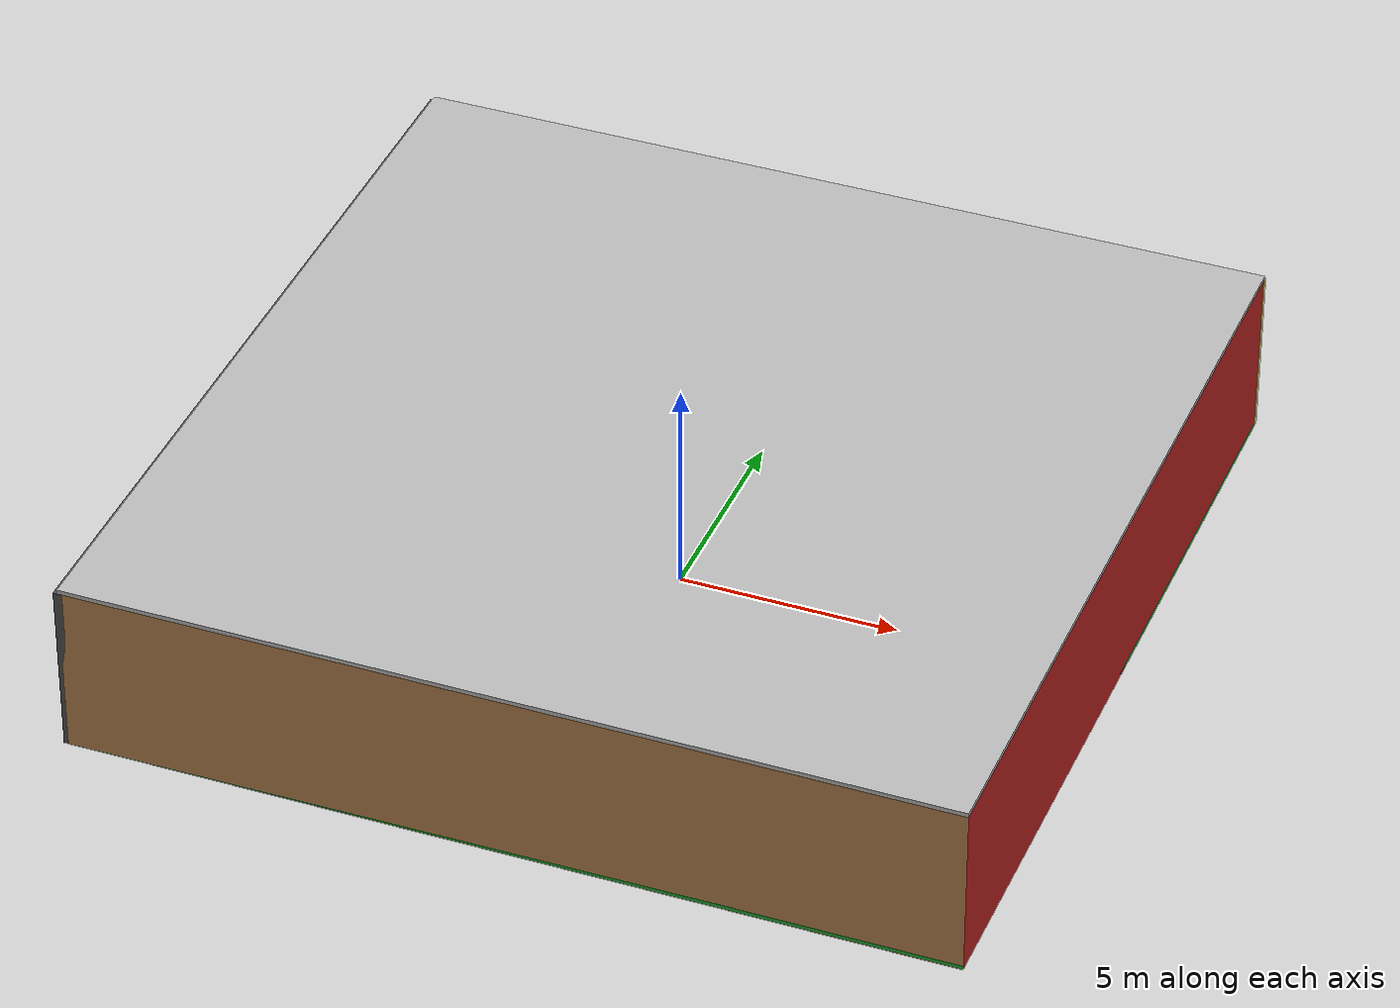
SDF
<sdf version="1.4">
 <world name="default">
  <physics type="ode">
   <max_step_size>0.001</max_step_size>
   <real_time_factor>1</real_time_factor>
   <real_time_update_rate>1000</real_time_update_rate>
   <gravity>0 0 -9.8</gravity>
  </physics>
  <scene><ambient>0.4 0.4 0.4 1</ambient><background>0.7 0.7 0.7 1</background><shadows>1</shadows></scene>
  <model name="Surrounding">
   <static>1</static>
   <link name="Ceiling">
    <collision name="Ceiling_Collision"><geometry><box><size>20 20 0.1</size></box></geometry></collision>
    <visual name="Ceiling_Visual">
     <geometry><box><size>20 20 0.1</size></box></geometry>
     <material>
      <script><uri>file://media/materials/scripts/gazebo.material</uri><name>Gazebo/PioneerBody</name></script>
     </material>
    </visual>
    <pose>0 0 4.05 0 0 0</pose>
   </link>
   <link name="Wall_South">
    <collision name="Wall_South_Collision">
     <geometry><box><size>20 0 4</size></box></geometry>
     <pose>0 0 2 0 -0 0</pose>
    </collision>
    <visual name="Wall_South_Visual">
     <pose>0 0 2 0 -0 0</pose>
     <geometry><box><size>20 0 4</size></box></geometry>
     <material>
      <script><uri>file://media/materials/scripts/gazebo.material</uri><name>Gazebo/WoodFloor</name></script>
     </material>
    </visual>
    <velocity_decay><linear>0</linear><angular>0</angular></velocity_decay>
    <pose>0 -10 0 0 -0 0</pose>
   </link>
   <link name="Wall_East">
    <collision name="Wall_21_Collision">
     <geometry><box><size>20 0 4</size></box></geometry>
     <pose>0 0 2 0 -0 0</pose>
    </collision>
    <visual name="Wall_21_Visual">
     <pose>0 0 2 0 -0 0</pose>
     <geometry><box><size>20 0 4</size></box></geometry>
     <material>
      <script><uri>file://media/materials/scripts/gazebo.material</uri><name>Gazebo/RedGlow</name></script>
     </material>
    </visual>
    <velocity_decay><linear>0</linear><angular>0</angular></velocity_decay>
    <pose>10 0 0 0 -0 1.5708</pose>
   </link>
   <link name="Wall_North">
    <collision name="Wall_22_Collision">
     <geometry><box><size>20 0.2 4</size></box></geometry>
     <pose>0 0 2 0 -0 0</pose>
    </collision>
    <visual name="Wall_22_Visual">
     <pose>0 0 2 0 -0 0</pose>
     <geometry><box><size>20 0.2 4</size></box></geometry>
     <material>
      <script>
       <uri>file://media/materials/scripts/gazebo.material</uri>
       <name>Gazebo/YellowTransparent</name>
      </script>
     </material>
    </visual>
    <velocity_decay><linear>0</linear><angular>0</angular></velocity_decay>
    <pose>0 10 0 0 -0 0</pose>
   </link>
   <link name="Wall_West">
    <collision name="Wall_23_Collision">
     <geometry><box><size>20 0.2 4</size></box></geometry>
     <pose>0 0 2 0 -0 0</pose>
    </collision>
    <visual name="Wall_23_Visual">
     <pose>0 0 2 0 -0 0</pose>
     <geometry><box><size>20 0.2 4</size></box></geometry>
     <material>
      <script><uri>file://media/materials/scripts/gazebo.material</uri><name>Gazebo/Road</name></script>
     </material>
    </visual>
    <velocity_decay><linear>0</linear><angular>0</angular></velocity_decay>
    <pose>-10 0 0 0 0 -1.5708</pose>
   </link>
   <link name="Ground_link">
    <collision name="collision">
     <pose>0 0 .05 0 -0 0</pose>
     <geometry><box><size>20 20 0.1</size></box></geometry>
    </collision>
    <visual name="visual">
     <pose>0 0 .05 0 -0 0</pose>
     <geometry><box><size>20 20 0.1</size></box></geometry>
     <material>
      <script><uri>file://media/materials/scripts/gazebo.material</uri><name>Gazebo/GreenGlow</name></script>
     </material>
    </visual>
   </link>
   <static>1</static>
  </model>
  <spherical_coordinates>
   <surface_model>EARTH_WGS84</surface_model>
   <latitude_deg>0</latitude_deg>
   <longitude_deg>0</longitude_deg>
   <elevation>0</elevation>
   <heading_deg>0</heading_deg>
  </spherical_coordinates>
  <light name="lightball_0" type="diffuse">
   <diffuse>0.8 0.8 0.8 1</diffuse>
   <specular>0.2 0.2 0.2 1</specular>
   <attenuation>
    <range>100</range>
    <constant>0.7</constant>
    <linear>0.01</linear>
    <quadratic>0.001</quadratic>
   </attenuation>
   <direction>-0.5 0.1 -0.9</direction>
   <pose>3.9815482227 -4.7542232075 1.60464362089 0 0 0</pose>
  </light>
  <light name="lightball_1" type="diffuse">
   <diffuse>0.8 0.8 0.8 1</diffuse>
   <specular>0.2 0.2 0.2 1</specular>
   <attenuation>
    <range>100</range>
    <constant>0.7</constant>
    <linear>0.01</linear>
    <quadratic>0.001</quadratic>
   </attenuation>
   <direction>-0.5 0.1 -0.9</direction>
   <pose>7.90472169421 3.82594262285 1.24828344749 0 0 0</pose>
  </light>
  <light name="lightball_2" type="diffuse">
   <diffuse>0.8 0.8 0.8 1</diffuse>
   <specular>0.2 0.2 0.2 1</specular>
   <attenuation>
    <range>100</range>
    <constant>0.7</constant>
    <linear>0.01</linear>
    <quadratic>0.001</quadratic>
   </attenuation>
   <direction>-0.5 0.1 -0.9</direction>
   <pose>-1.84041673472 -3.41301966238 1.16358732361 0 0 0</pose>
  </light>
  <light name="lightball_3" type="diffuse">
   <diffuse>0.8 0.8 0.8 1</diffuse>
   <specular>0.2 0.2 0.2 1</specular>
   <attenuation>
    <range>100</range>
    <constant>0.7</constant>
    <linear>0.01</linear>
    <quadratic>0.001</quadratic>
   </attenuation>
   <direction>-0.5 0.1 -0.9</direction>
   <pose>-8.97954788078 9.79481988552 2.70768888715 0 0 0</pose>
  </light>
  <light name="lightball_4" type="diffuse">
   <diffuse>0.8 0.8 0.8 1</diffuse>
   <specular>0.2 0.2 0.2 1</specular>
   <attenuation>
    <range>100</range>
    <constant>0.7</constant>
    <linear>0.01</linear>
    <quadratic>0.001</quadratic>
   </attenuation>
   <direction>-0.5 0.1 -0.9</direction>
   <pose>7.10749654577 2.58169620878 2.70587461758 0 0 0</pose>
  </light>
  <light name="lightball_5" type="diffuse">
   <diffuse>0.8 0.8 0.8 1</diffuse>
   <specular>0.2 0.2 0.2 1</specular>
   <attenuation>
    <range>100</range>
    <constant>0.7</constant>
    <linear>0.01</linear>
    <quadratic>0.001</quadratic>
   </attenuation>
   <direction>-0.5 0.1 -0.9</direction>
   <pose>-7.87562427138 0.956348937823 1.47254126194 0 0 0</pose>
  </light>
  <light name="lightball_6" type="diffuse">
   <diffuse>0.8 0.8 0.8 1</diffuse>
   <specular>0.2 0.2 0.2 1</specular>
   <attenuation>
    <range>100</range>
    <constant>0.7</constant>
    <linear>0.01</linear>
    <quadratic>0.001</quadratic>
   </attenuation>
   <direction>-0.5 0.1 -0.9</direction>
   <pose>1.5664274265 -6.43447205407 3.33944471331 0 0 0</pose>
  </light>
  <light name="lightball_7" type="diffuse">
   <diffuse>0.8 0.8 0.8 1</diffuse>
   <specular>0.2 0.2 0.2 1</specular>
   <attenuation>
    <range>100</range>
    <constant>0.7</constant>
    <linear>0.01</linear>
    <quadratic>0.001</quadratic>
   </attenuation>
   <direction>-0.5 0.1 -0.9</direction>
   <pose>-4.31818908473 4.21492808397 2.0876829427 0 0 0</pose>
  </light>
  <light name="lightball_8" type="diffuse">
   <diffuse>0.8 0.8 0.8 1</diffuse>
   <specular>0.2 0.2 0.2 1</specular>
   <attenuation>
    <range>100</range>
    <constant>0.7</constant>
    <linear>0.01</linear>
    <quadratic>0.001</quadratic>
   </attenuation>
   <direction>-0.5 0.1 -0.9</direction>
   <pose>-0.783898358791 7.78105631223 2.61611505518 0 0 0</pose>
  </light>
  <light name="lightball_9" type="diffuse">
   <diffuse>0.8 0.8 0.8 1</diffuse>
   <specular>0.2 0.2 0.2 1</specular>
   <attenuation>
    <range>100</range>
    <constant>0.7</constant>
    <linear>0.01</linear>
    <quadratic>0.001</quadratic>
   </attenuation>
   <direction>-0.5 0.1 -0.9</direction>
   <pose>2.74788466722 6.2026276233 0.927405772324 0 0 0</pose>
  </light>
  <include>
   <uri>model://construction_cone</uri>
   <pose>-7.63595090211 -1.19633778795 0 0 0 2.8755876718</pose>
  </include>
  <include>
   <uri>model://robocup_3Dsim_goal</uri>
   <pose>-7.38663177259 0.486811472798 0 0 0 0.135383446902</pose>
  </include>
  <include><uri>model://cabinet</uri><pose>-2.03814523996 4.54467973434 0 0 0 2.11447715801</pose></include>
  <include><uri>model://cabinet</uri><pose>1.56249321043 6.69822059505 0 0 0 2.6976122314</pose></include>
  <include><uri>model://cabinet</uri><pose>5.45978383306 -1.08121808027 0 0 0 2.20125055078</pose></include>
 </world>
</sdf>

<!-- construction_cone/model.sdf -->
<sdf version="1.5">
  <model name="Construction Cone">
    <link name="link">
      <collision name="collision">
        <geometry>
          <mesh>
            <scale>10 10 10</scale>
            <uri>file://isr-testbed/construction_cone/meshes/construction_cone.dae</uri>
          </mesh>
        </geometry>
      </collision>
      <visual name="visual">
        <geometry>
          <mesh>
            <scale>10 10 10</scale>
            <uri>file://isr-testbed/construction_cone/meshes/construction_cone.dae</uri>
          </mesh>
        </geometry>
      </visual>
    </link>
  </model>
</sdf>

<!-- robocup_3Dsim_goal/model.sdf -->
<sdf version="1.5">
  <model name="robocup_3d_goal">
    <static>true</static>
    <link name="left_post">
      <pose>0 1.05 0.45 0 0 0</pose>
      <collision name="collision">
        <geometry>
          <cylinder>
            <radius>0.05</radius>
            <length>0.9</length>
          </cylinder>
        </geometry>
      </collision>
      <visual name="visual">
        <geometry>
          <cylinder>
            <radius>0.05</radius>
            <length>0.9</length>
          </cylinder>
        </geometry>
        <material>
          <script>
            <uri>file://media/materials/scripts/gazebo.material</uri>
            <name>Gazebo/ZincYellow</name>
          </script>
        </material>
      </visual>
    </link>
    <link name="left_support_horiz_lower">
      <pose>0.30 1.05 0.01 0 0 0</pose>
      <collision name="collision">
        <geometry>
          <box>
            <size>0.50 0.02 0.02</size>
          </box>
        </geometry>
      </collision>
      <visual name="visual">
        <geometry>
          <box>
            <size>0.50 0.02 0.02</size>
          </box>
        </geometry>
        <material>
          <script>
            <uri>file://media/materials/scripts/gazebo.material</uri>
            <name>Gazebo/White</name>
          </script>
        </material>
      </visual>
    </link>
    <link name="left_support_horiz_upper">
      <pose>0.30 1.05 0.79 0 0 0</pose>
      <collision name="collision">
        <geometry>
          <box>
            <size>0.50 0.02 0.02</size>
          </box>
        </geometry>
      </collision>
      <visual name="visual">
        <geometry>
          <box>
            <size>0.50 0.02 0.02</size>
          </box>
        </geometry>
        <material>
          <script>
            <uri>file://media/materials/scripts/gazebo.material</uri>
            <name>Gazebo/White</name>
          </script>
        </material>
      </visual>
    </link>
    <link name="left_support_vertical">
      <pose>0.56 1.05 0.4 0 1.5708 0</pose>
      <collision name="collision">
        <geometry>
          <box>
            <size>0.80 0.02 0.02</size>
          </box>
        </geometry>
      </collision>
      <visual name="visual">
        <geometry>
          <box>
            <size>0.80 0.02 0.02</size>
          </box>
        </geometry>
        <material>
          <script>
            <uri>file://media/materials/scripts/gazebo.material</uri>
            <name>Gazebo/White</name>
          </script>
        </material>
      </visual>
    </link>
    <link name="right_support_horiz_lower">
      <pose>0.30 -1.05 0.01 0 0 0</pose>
      <collision name="collision">
        <geometry>
          <box>
            <size>0.50 0.02 0.02</size>
          </box>
        </geometry>
      </collision>
      <visual name="visual">
        <geometry>
          <box>
            <size>0.50 0.02 0.02</size>
          </box>
        </geometry>
        <material>
          <script>
            <uri>file://media/materials/scripts/gazebo.material</uri>
            <name>Gazebo/White</name>
          </script>
        </material>
      </visual>
    </link>
    <link name="right_support_horiz_upper">
      <pose>0.30 -1.05 0.79 0 0 0</pose>
      <collision name="collision">
        <geometry>
          <box>
            <size>0.50 0.02 0.02</size>
          </box>
        </geometry>
      </collision>
      <visual name="visual">
        <geometry>
          <box>
            <size>0.50 0.02 0.02</size>
          </box>
        </geometry>
        <material>
          <script>
            <uri>file://media/materials/scripts/gazebo.material</uri>
            <name>Gazebo/White</name>
          </script>
        </material>
      </visual>
    </link>
    <link name="right_support_vertical">
      <pose>0.56 -1.05 0.4 0 1.5708 0</pose>
      <collision name="collision">
        <geometry>
          <box>
            <size>0.80 0.02 0.02</size>
          </box>
        </geometry>
      </collision>
      <visual name="visual">
        <geometry>
          <box>
            <size>0.80 0.02 0.02</size>
          </box>
        </geometry>
        <material>
          <script>
            <uri>file://media/materials/scripts/gazebo.material</uri>
            <name>Gazebo/White</name>
          </script>
        </material>
      </visual>
    </link>
    <link name="center_support_horiz_lower">
      <pose>0.56 0 0.01 0 1.5708 0</pose>
      <collision name="collision">
        <geometry>
          <box>
            <size>0.02 2.08 0.02</size>
          </box>
        </geometry>
      </collision>
      <visual name="visual">
        <geometry>
          <box>
            <size>0.02 2.08 0.02</size>
          </box>
        </geometry>
        <material>
          <script>
            <uri>file://media/materials/scripts/gazebo.material</uri>
            <name>Gazebo/White</name>
          </script>
        </material>
      </visual>
    </link>
    <link name="center_support_horiz_upper">
      <pose>0.56 0 0.79 0 1.5708 0</pose>
      <collision name="collision">
        <geometry>
          <box>
            <size>0.02 2.08 0.02</size>
          </box>
        </geometry>
      </collision>
      <visual name="visual">
        <geometry>
          <box>
            <size>0.02 2.08 0.02</size>
          </box>
        </geometry>
        <material>
          <script>
            <uri>file://media/materials/scripts/gazebo.material</uri>
            <name>Gazebo/White</name>
          </script>
        </material>
      </visual>
    </link>
    <link name="right_post">
      <pose>0 -1.05 0.45 0 0 0</pose>
      <collision name="collision">
        <geometry>
          <cylinder>
            <radius>0.05</radius>
            <length>0.9</length>
          </cylinder>
        </geometry>
      </collision>
      <visual name="visual">
        <geometry>
          <cylinder>
            <radius>0.05</radius>
            <length>0.9</length>
          </cylinder>
        </geometry>
        <material>
          <script>
            <uri>file://media/materials/scripts/gazebo.material</uri>
            <name>Gazebo/ZincYellow</name>
          </script>
        </material>
      </visual>
    </link>
    <link name="crossbar">
      <pose>0 0 0.85 1.57 1.57 0</pose>
      <collision name="collision">
        <geometry>
          <cylinder>
            <radius>0.05</radius>
            <length>2.0</length>
          </cylinder>
        </geometry>
      </collision>
      <visual name="visual">
        <geometry>
          <cylinder>
            <radius>0.05</radius>
            <length>2.0</length>
          </cylinder>
        </geometry>
        <material>
          <script>
            <uri>file://media/materials/scripts/gazebo.material</uri>
            <name>Gazebo/ZincYellow</name>
          </script>
        </material>
      </visual>
    </link>
    <link name="center_net">
      <pose>0.56 0 0.40 0 0 0</pose>
      <collision name="collision">
        <geometry>
          <box>
            <size>0.01 2.1 0.80</size>
          </box>
        </geometry>
      </collision>
      <visual name="visual">
        <geometry>
          <box>
            <size>0.01 2.1 0.80</size>
          </box>
        </geometry>
        <material>
          <script>
            <uri>model://../model_source/models/robocup09_spl_field/materials/scripts/</uri>
            <uri>model://../model_source/models/robocup09_spl_field/materials/textures/</uri>
            <name>RoboCup/Net</name>
          </script>
        </material>
      </visual>
    </link>
    <link name="left_net">
      <pose>0.30 1.05 0.40 0 0 0</pose>
      <collision name="collision">
        <geometry>
          <box>
            <size>0.50 0.01 0.76</size>
          </box>
        </geometry>
      </collision>
      <visual name="visual">
        <geometry>
          <box>
            <size>0.50 0.01 0.76</size>
          </box>
        </geometry>
        <material>
          <script>
            <uri>model://../model_source/models/robocup09_spl_field/materials/scripts/</uri>
            <uri>model://../model_source/models/robocup09_spl_field/materials/textures/</uri>
            <name>RoboCup/Net</name>
          </script>
        </material>
      </visual>
    </link>
    <link name="right_net">
      <pose>0.30 -1.05 0.40 0 0 0</pose>
      <collision name="collision">
        <geometry>
          <box>
            <size>0.50 0.01 0.76</size>
          </box>
        </geometry>
      </collision>
      <visual name="visual">
        <geometry>
          <box>
            <size>0.50 0.01 0.76</size>
          </box>
        </geometry>
        <material>
          <script>
            <uri>model://../model_source/models/robocup09_spl_field/materials/scripts/</uri>
            <uri>model://../model_source/models/robocup09_spl_field/materials/textures/</uri>
            <name>RoboCup/Net</name>
          </script>
        </material>
      </visual>
    </link>
  </model>
</sdf>

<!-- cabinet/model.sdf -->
<sdf version="1.5">
  <model name="cabinet">
    <static>true</static>
    <link name="cabinet_bottom_plate">
      <inertial>
        <pose>0 0 -1 0 0 0</pose>
        <inertia>
          <ixx>2.050000</ixx>
          <ixy>0</ixy>
          <ixz>0</ixz>
          <iyy>2.050000</iyy>
          <iyz>0</iyz>
          <izz>2.050000</izz>
        </inertia>
        <mass>25.000000</mass>
      </inertial>
      <collision name="cabinet_bottom_plate_geom">
        <pose>0 0 0.010000 0 0 0</pose>
        <geometry>
          <box>
            <size>0.450000 0.450000 0.020000</size>
          </box>
        </geometry>
      </collision>
      <visual name="cabinet_bottom_plate_geom_visual">
        <pose>0 0 0.010000 0 0 0</pose>
        <geometry>
          <box>
            <size>0.450000 0.450000 0.020000</size>
          </box>
        </geometry>
        <material>
          <script>
            <uri>model://media/materials/scripts/gazebo.material</uri>
            <name>Gazebo/Wood</name>
          </script>
        </material>
      </visual>
      <collision name="cabinet_bottom_plate_geom_cabinet_back_plate">
        <pose>0.235000 0 0.510000 0 0 0</pose>
        <geometry>
          <box>
            <size>0.020000 0.450000 1.020000</size>
          </box>
        </geometry>
      </collision>
      <visual name="cabinet_bottom_plate_geom_cabinet_back_plate_visual">
        <pose>0.235000 0 0.510000 0 0 0</pose>
        <geometry>
          <box>
            <size>0.020000 0.450000 1.020000</size>
          </box>
        </geometry>
        <material>
          <script>
            <uri>model://media/materials/scripts/gazebo.material</uri>
            <name>Gazebo/Wood</name>
          </script>
        </material>
      </visual>
      <collision name="cabinet_bottom_plate_geom_cabinet_left_plate">
        <pose>0 0.235000 0.510000 0 0 0</pose>
        <geometry>
          <box>
            <size>0.450000 0.020000 1.020000</size>
          </box>
        </geometry>
      </collision>
      <visual name="cabinet_bottom_plate_geom_cabinet_left_plate_visual">
        <pose>0 0.235000 0.510000 0 0 0</pose>
        <geometry>
          <box>
            <size>0.450000 0.020000 1.020000</size>
          </box>
        </geometry>
        <material>
          <script>
            <uri>model://media/materials/scripts/gazebo.material</uri>
            <name>Gazebo/Wood</name>
          </script>
        </material>
      </visual>
      <collision name="cabinet_bottom_plate_geom_cabinet_middle_plate">
        <pose>0 0 0.510000 0 0 0</pose>
        <geometry>
          <box>
            <size>0.450000 0.450000 0.020000</size>
          </box>
        </geometry>
      </collision>
      <visual name="cabinet_bottom_plate_geom_cabinet_middle_plate_visual">
        <pose>0 0 0.510000 0 0 0</pose>
        <geometry>
          <box>
            <size>0.450000 0.450000 0.020000</size>
          </box>
        </geometry>
        <material>
          <script>
            <uri>model://media/materials/scripts/gazebo.material</uri>
            <name>Gazebo/Wood</name>
          </script>
        </material>
      </visual>
      <collision name="cabinet_bottom_plate_geom_cabinet_right_plate">
        <pose>0 -0.235000 0.510000 0 0 0</pose>
        <geometry>
          <box>
            <size>0.450000 0.020000 1.020000</size>
          </box>
        </geometry>
      </collision>
      <visual name="cabinet_bottom_plate_geom_cabinet_right_plate_visual">
        <pose>0 -0.235000 0.510000 0 0 0</pose>
        <geometry>
          <box>
            <size>0.450000 0.020000 1.020000</size>
          </box>
        </geometry>
        <material>
          <script>
            <uri>model://media/materials/scripts/gazebo.material</uri>
            <name>Gazebo/Wood</name>
          </script>
        </material>
      </visual>
      <collision name="cabinet_bottom_plate_geom_cabinet_top_plate">
        <pose>0 0 1.010000 0 0 0</pose>
        <geometry>
          <box>
            <size>0.450000 0.450000 0.020000</size>
          </box>
        </geometry>
      </collision>
      <visual name="cabinet_bottom_plate_geom_cabinet_top_plate_visual">
        <pose>0 0 1.010000 0 0 0</pose>
        <geometry>
          <box>
            <size>0.450000 0.450000 0.020000</size>
          </box>
        </geometry>
        <material>
          <script>
            <uri>model://media/materials/scripts/gazebo.material</uri>
            <name>Gazebo/Wood</name>
          </script>
        </material>
      </visual>
    </link>
  </model>
</sdf>
